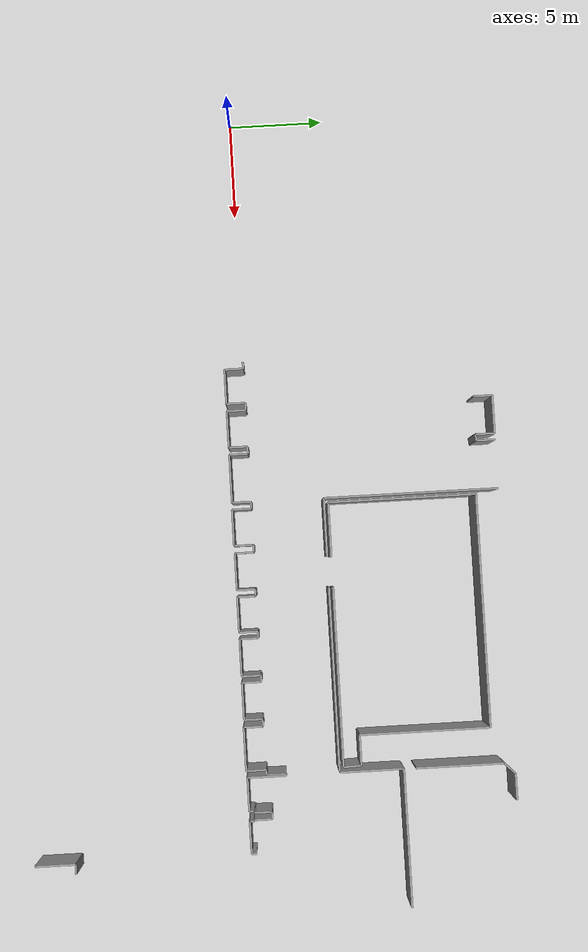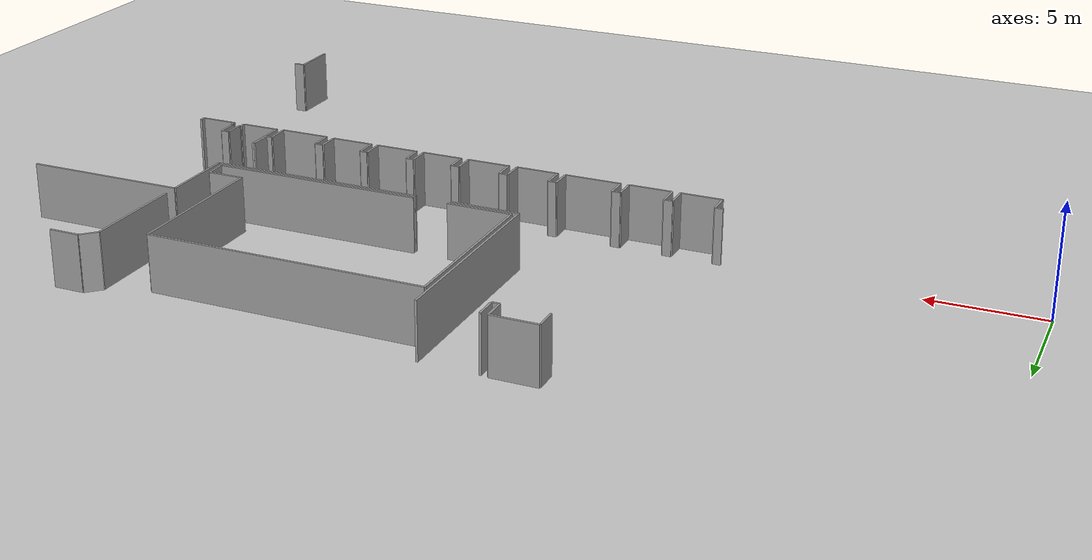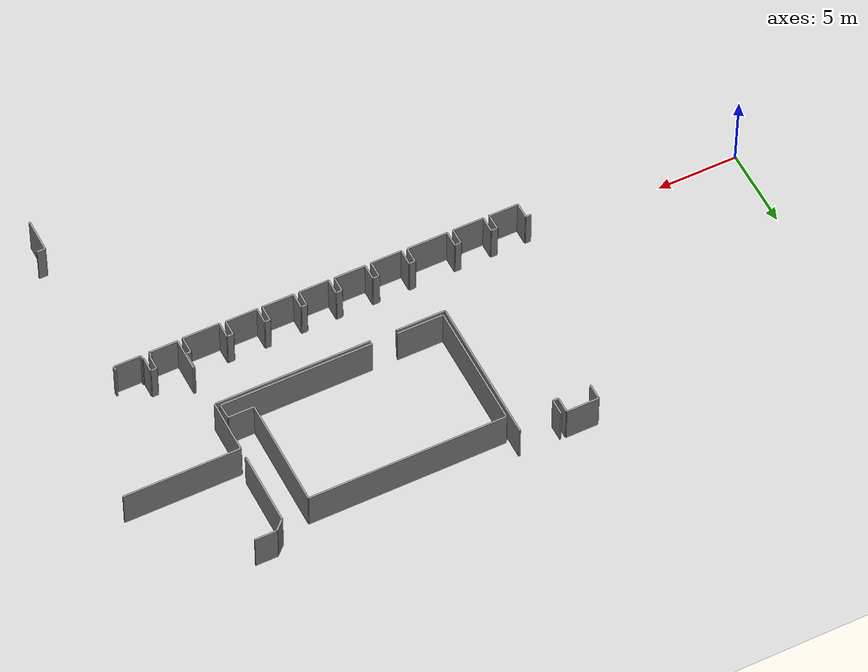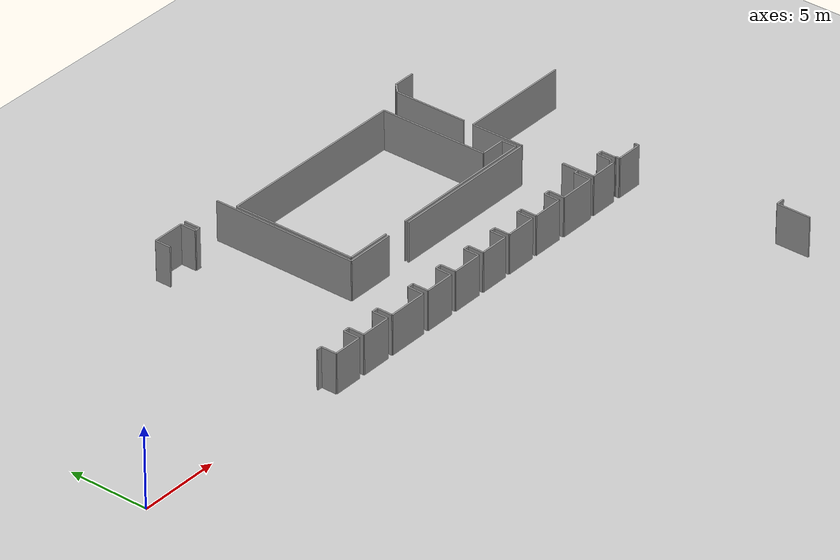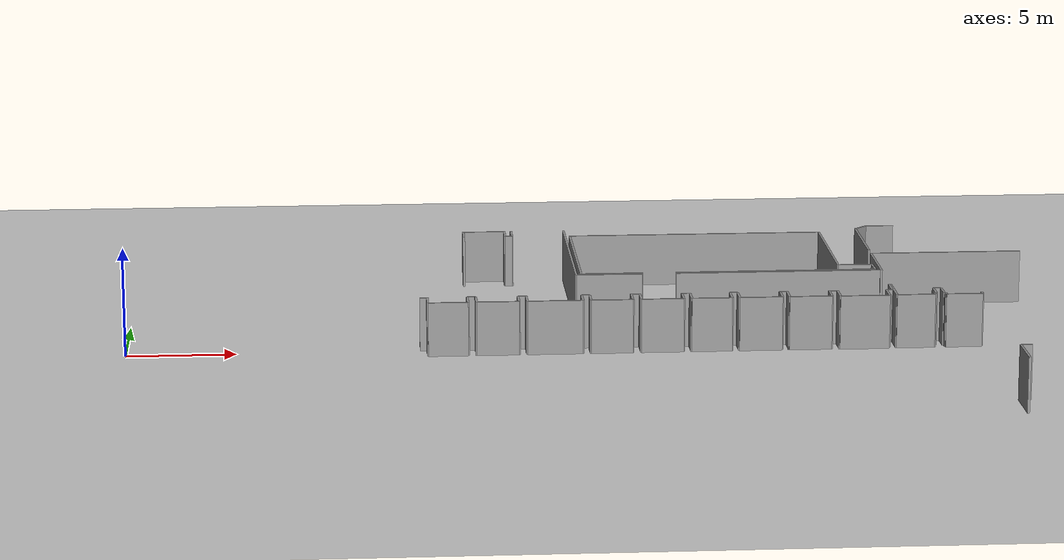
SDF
<sdf version="1.6">
 <world name="default">
  <model name="ground_plane">
   <static>1</static>
   <link name="link">
    <collision name="collision">
     <geometry><plane><normal>0 0 1</normal><size>100 100</size></plane></geometry>
     <surface><friction><ode><mu>100</mu><mu2>50</mu2></ode></friction></surface>
    </collision>
    <visual name="visual">
     <cast_shadows>0</cast_shadows>
     <geometry><plane><normal>0 0 1</normal><size>100 100</size></plane></geometry>
     <material>
      <script><uri>file://media/materials/scripts/gazebo.material</uri><name>Gazebo/Grey</name></script>
     </material>
    </visual>
   </link>
  </model>
  <model name="50010541">
   <static>1</static>
   <link name="Wall_157">
    <collision name="Wall_157_Collision">
     <geometry><box><size>2.2736216724 0.1 2.5</size></box></geometry>
     <pose>1.1368108362 0 1.25 0 0 0</pose>
    </collision>
    <visual name="Wall_157_Visual">
     <pose>1.1368108362 0 1.25 0 0 0</pose>
     <geometry><box><size>2.2736216724 0.1 2.5</size></box></geometry>
     <material>
      <script><uri>file://media/materials/scripts/gazebo.material</uri><name>Gazebo/Grey</name></script>
      <ambient>1 1 1 1</ambient>
     </material>
    </visual>
    <pose>87.7014967057 -14.0532923718 0 0 0 3.14159265359</pose>
   </link>
   <link name="Wall_158">
    <collision name="Wall_158_Collision">
     <geometry><box><size>1.00567453315 0.1 2.5</size></box></geometry>
     <pose>0.502837266576 0 1.25 0 0 0</pose>
    </collision>
    <visual name="Wall_158_Visual">
     <pose>0.502837266576 0 1.25 0 0 0</pose>
     <geometry><box><size>1.00567453315 0.1 2.5</size></box></geometry>
     <material>
      <script><uri>file://media/materials/scripts/gazebo.material</uri><name>Gazebo/Grey</name></script>
      <ambient>1 1 1 1</ambient>
     </material>
    </visual>
    <pose>85.4278750333 -14.0532923718 0 0 0 1.57079632679</pose>
   </link>
   <link name="Wall_159">
    <collision name="Wall_159_Collision">
     <geometry><box><size>0.380841151156 0.1 2.5</size></box></geometry>
     <pose>0.190420575578 0 1.25 0 0 0</pose>
    </collision>
    <visual name="Wall_159_Visual">
     <pose>0.190420575578 0 1.25 0 0 0</pose>
     <geometry><box><size>0.380841151156 0.1 2.5</size></box></geometry>
     <material>
      <script><uri>file://media/materials/scripts/gazebo.material</uri><name>Gazebo/Grey</name></script>
      <ambient>1 1 1 1</ambient>
     </material>
    </visual>
    <pose>85.4278750333 -13.0476178386 0 0 0 3.14159265359</pose>
   </link>
   <link name="Wall_160">
    <collision name="Wall_160_Collision">
     <geometry><box><size>0.964797582928 0.1 2.5</size></box></geometry>
     <pose>0.482398791464 0 1.25 0 0 0</pose>
    </collision>
    <visual name="Wall_160_Visual">
     <pose>0.482398791464 0 1.25 0 0 0</pose>
     <geometry><box><size>0.964797582928 0.1 2.5</size></box></geometry>
     <material>
      <script><uri>file://media/materials/scripts/gazebo.material</uri><name>Gazebo/Grey</name></script>
      <ambient>1 1 1 1</ambient>
     </material>
    </visual>
    <pose>85.0470338822 -13.0476178386 0 0 0 -1.57079632679</pose>
   </link>
   <link name="Wall_161">
    <collision name="Wall_161_Collision">
     <geometry><box><size>1.94228987089 0.1 2.5</size></box></geometry>
     <pose>0.971144935447 0 1.25 0 0 0</pose>
    </collision>
    <visual name="Wall_161_Visual">
     <pose>0.971144935447 0 1.25 0 0 0</pose>
     <geometry><box><size>1.94228987089 0.1 2.5</size></box></geometry>
     <material>
      <script><uri>file://media/materials/scripts/gazebo.material</uri><name>Gazebo/Grey</name></script>
      <ambient>1 1 1 1</ambient>
     </material>
    </visual>
    <pose>85.0470338822 -14.0124154215 0 0 0 3.14159265359</pose>
   </link>
   <link name="Wall_162">
    <collision name="Wall_162_Collision">
     <geometry><box><size>1.00288169804 0.1 2.5</size></box></geometry>
     <pose>0.501440849022 0 1.25 0 0 0</pose>
    </collision>
    <visual name="Wall_162_Visual">
     <pose>0.501440849022 0 1.25 0 0 0</pose>
     <geometry><box><size>1.00288169804 0.1 2.5</size></box></geometry>
     <material>
      <script><uri>file://media/materials/scripts/gazebo.material</uri><name>Gazebo/Grey</name></script>
      <ambient>1 1 1 1</ambient>
     </material>
    </visual>
    <pose>83.1047440113 -14.0124154215 0 0 0 1.57079632679</pose>
   </link>
   <link name="Wall_163">
    <collision name="Wall_163_Collision">
     <geometry><box><size>0.330062331002 0.1 2.5</size></box></geometry>
     <pose>0.165031165501 0 1.25 0 0 0</pose>
    </collision>
    <visual name="Wall_163_Visual">
     <pose>0.165031165501 0 1.25 0 0 0</pose>
     <geometry><box><size>0.330062331002 0.1 2.5</size></box></geometry>
     <material>
      <script><uri>file://media/materials/scripts/gazebo.material</uri><name>Gazebo/Grey</name></script>
      <ambient>1 1 1 1</ambient>
     </material>
    </visual>
    <pose>83.1047440113 -13.0095337235 0 0 0 3.14159265359</pose>
   </link>
   <link name="Wall_164">
    <collision name="Wall_164_Collision">
     <geometry><box><size>1.00288169804 0.1 2.5</size></box></geometry>
     <pose>0.501440849022 0 1.25 0 0 0</pose>
    </collision>
    <visual name="Wall_164_Visual">
     <pose>0.501440849022 0 1.25 0 0 0</pose>
     <geometry><box><size>1.00288169804 0.1 2.5</size></box></geometry>
     <material>
      <script><uri>file://media/materials/scripts/gazebo.material</uri><name>Gazebo/Grey</name></script>
      <ambient>1 1 1 1</ambient>
     </material>
    </visual>
    <pose>82.7746816803 -13.0095337235 0 0 0 -1.57079632679</pose>
   </link>
   <link name="Wall_165">
    <collision name="Wall_165_Collision">
     <geometry><box><size>1.95358815838 0.1 2.5</size></box></geometry>
     <pose>0.97679407919 0 1.25 0 0 0</pose>
    </collision>
    <visual name="Wall_165_Visual">
     <pose>0.97679407919 0 1.25 0 0 0</pose>
     <geometry><box><size>1.95358815838 0.1 2.5</size></box></geometry>
     <material>
      <script><uri>file://media/materials/scripts/gazebo.material</uri><name>Gazebo/Grey</name></script>
      <ambient>1 1 1 1</ambient>
     </material>
    </visual>
    <pose>82.7746816803 -14.0124154215 0 0 0 3.14159265359</pose>
   </link>
   <link name="Wall_166">
    <collision name="Wall_166_Collision">
     <geometry><box><size>0.98180848768 0.1 2.5</size></box></geometry>
     <pose>0.49090424384 0 1.25 0 0 0</pose>
    </collision>
    <visual name="Wall_166_Visual">
     <pose>0.49090424384 0 1.25 0 0 0</pose>
     <geometry><box><size>0.98180848768 0.1 2.5</size></box></geometry>
     <material>
      <script><uri>file://media/materials/scripts/gazebo.material</uri><name>Gazebo/Grey</name></script>
      <ambient>1 1 1 1</ambient>
     </material>
    </visual>
    <pose>80.8210935219 -14.0124154215 0 0 0 1.57079632679</pose>
   </link>
   <link name="Wall_167">
    <collision name="Wall_167_Collision">
     <geometry><box><size>0.347073235753 0.1 2.5</size></box></geometry>
     <pose>0.173536617877 0 1.25 0 0 0</pose>
    </collision>
    <visual name="Wall_167_Visual">
     <pose>0.173536617877 0 1.25 0 0 0</pose>
     <geometry><box><size>0.347073235753 0.1 2.5</size></box></geometry>
     <material>
      <script><uri>file://media/materials/scripts/gazebo.material</uri><name>Gazebo/Grey</name></script>
      <ambient>1 1 1 1</ambient>
     </material>
    </visual>
    <pose>80.8210935219 -13.0306069338 0 0 0 3.14159265359</pose>
   </link>
   <link name="Wall_168">
    <collision name="Wall_168_Collision">
     <geometry><box><size>0.984601322788 0.1 2.5</size></box></geometry>
     <pose>0.492300661394 0 1.25 0 0 0</pose>
    </collision>
    <visual name="Wall_168_Visual">
     <pose>0.492300661394 0 1.25 0 0 0</pose>
     <geometry><box><size>0.984601322788 0.1 2.5</size></box></geometry>
     <material>
      <script><uri>file://media/materials/scripts/gazebo.material</uri><name>Gazebo/Grey</name></script>
      <ambient>1 1 1 1</ambient>
     </material>
    </visual>
    <pose>80.4740202861 -13.0306069338 0 0 0 -1.57079632679</pose>
   </link>
   <link name="Wall_169">
    <collision name="Wall_169_Collision">
     <geometry><box><size>1.84301727749 0.1 2.5</size></box></geometry>
     <pose>0.921508638747 0 1.25 0 0 0</pose>
    </collision>
    <visual name="Wall_169_Visual">
     <pose>0.921508638747 0 1.25 0 0 0</pose>
     <geometry><box><size>1.84301727749 0.1 2.5</size></box></geometry>
     <material>
      <script><uri>file://media/materials/scripts/gazebo.material</uri><name>Gazebo/Grey</name></script>
      <ambient>1 1 1 1</ambient>
     </material>
    </visual>
    <pose>80.4740202861 -14.0152082566 0 0 0 3.14159265359</pose>
   </link>
   <link name="Wall_170">
    <collision name="Wall_170_Collision">
     <geometry><box><size>0.978253970269 0.1 2.5</size></box></geometry>
     <pose>0.489126985135 0 1.25 0 0 0</pose>
    </collision>
    <visual name="Wall_170_Visual">
     <pose>0.489126985135 0 1.25 0 0 0</pose>
     <geometry><box><size>0.978253970269 0.1 2.5</size></box></geometry>
     <material>
      <script><uri>file://media/materials/scripts/gazebo.material</uri><name>Gazebo/Grey</name></script>
      <ambient>1 1 1 1</ambient>
     </material>
    </visual>
    <pose>78.6310030086 -14.0152082566 0 0 0 1.57079632679</pose>
   </link>
   <link name="Wall_171">
    <collision name="Wall_171_Collision">
     <geometry><box><size>0.366115293311 0.1 2.5</size></box></geometry>
     <pose>0.183057646656 0 1.25 0 0 0</pose>
    </collision>
    <visual name="Wall_171_Visual">
     <pose>0.183057646656 0 1.25 0 0 0</pose>
     <geometry><box><size>0.366115293311 0.1 2.5</size></box></geometry>
     <material>
      <script><uri>file://media/materials/scripts/gazebo.material</uri><name>Gazebo/Grey</name></script>
      <ambient>1 1 1 1</ambient>
     </material>
    </visual>
    <pose>78.6310030086 -13.0369542864 0 0 0 3.14159265359</pose>
   </link>
   <link name="Wall_172">
    <collision name="Wall_172_Collision">
     <geometry><box><size>0.9720335648 0.1 2.5</size></box></geometry>
     <pose>0.4860167824 0 1.25 0 0 0</pose>
    </collision>
    <visual name="Wall_172_Visual">
     <pose>0.4860167824 0 1.25 0 0 0</pose>
     <geometry><box><size>0.9720335648 0.1 2.5</size></box></geometry>
     <material>
      <script><uri>file://media/materials/scripts/gazebo.material</uri><name>Gazebo/Grey</name></script>
      <ambient>1 1 1 1</ambient>
     </material>
    </visual>
    <pose>78.2648877153 -13.0369542864 0 0 0 -1.57079632679</pose>
   </link>
   <link name="Wall_173">
    <collision name="Wall_173_Collision">
     <geometry><box><size>1.93124547751 0.1 2.5</size></box></geometry>
     <pose>0.965622738756 0 1.25 0 0 0</pose>
    </collision>
    <visual name="Wall_173_Visual">
     <pose>0.965622738756 0 1.25 0 0 0</pose>
     <geometry><box><size>1.93124547751 0.1 2.5</size></box></geometry>
     <material>
      <script><uri>file://media/materials/scripts/gazebo.material</uri><name>Gazebo/Grey</name></script>
      <ambient>1 1 1 1</ambient>
     </material>
    </visual>
    <pose>78.2648877153 -14.0089878512 0 0 0 3.14159265359</pose>
   </link>
   <link name="Wall_174">
    <collision name="Wall_174_Collision">
     <geometry><box><size>0.990948675308 0.1 2.5</size></box></geometry>
     <pose>0.495474337654 0 1.25 0 0 0</pose>
    </collision>
    <visual name="Wall_174_Visual">
     <pose>0.495474337654 0 1.25 0 0 0</pose>
     <geometry><box><size>0.990948675308 0.1 2.5</size></box></geometry>
     <material>
      <script><uri>file://media/materials/scripts/gazebo.material</uri><name>Gazebo/Grey</name></script>
      <ambient>1 1 1 1</ambient>
     </material>
    </visual>
    <pose>76.3336422378 -14.0089878512 0 0 0 1.57079632679</pose>
   </link>
   <link name="Wall_175">
    <collision name="Wall_175_Collision">
     <geometry><box><size>0.391377756338 0.1 2.5</size></box></geometry>
     <pose>0.195688878169 0 1.25 0 0 0</pose>
    </collision>
    <visual name="Wall_175_Visual">
     <pose>0.195688878169 0 1.25 0 0 0</pose>
     <geometry><box><size>0.391377756338 0.1 2.5</size></box></geometry>
     <material>
      <script><uri>file://media/materials/scripts/gazebo.material</uri><name>Gazebo/Grey</name></script>
      <ambient>1 1 1 1</ambient>
     </material>
    </visual>
    <pose>76.3336422378 -13.0180391759 0 0 0 3.14159265359</pose>
   </link>
   <link name="Wall_176">
    <collision name="Wall_176_Collision">
     <geometry><box><size>1.00986378581 0.1 2.5</size></box></geometry>
     <pose>0.504931892907 0 1.25 0 0 0</pose>
    </collision>
    <visual name="Wall_176_Visual">
     <pose>0.504931892907 0 1.25 0 0 0</pose>
     <geometry><box><size>1.00986378581 0.1 2.5</size></box></geometry>
     <material>
      <script><uri>file://media/materials/scripts/gazebo.material</uri><name>Gazebo/Grey</name></script>
      <ambient>1 1 1 1</ambient>
     </material>
    </visual>
    <pose>75.9422644815 -13.0180391759 0 0 0 -1.57079632679</pose>
   </link>
   <link name="Wall_177">
    <collision name="Wall_177_Collision">
     <geometry><box><size>1.90572912038 0.1 2.5</size></box></geometry>
     <pose>0.952864560192 0 1.25 0 0 0</pose>
    </collision>
    <visual name="Wall_177_Visual">
     <pose>0.952864560192 0 1.25 0 0 0</pose>
     <geometry><box><size>1.90572912038 0.1 2.5</size></box></geometry>
     <material>
      <script><uri>file://media/materials/scripts/gazebo.material</uri><name>Gazebo/Grey</name></script>
      <ambient>1 1 1 1</ambient>
     </material>
    </visual>
    <pose>75.9422644815 -14.0279029617 0 0 0 3.14159265359</pose>
   </link>
   <link name="Wall_178">
    <collision name="Wall_178_Collision">
     <geometry><box><size>1.0045320097 0.1 2.5</size></box></geometry>
     <pose>0.502266004849 0 1.25 0 0 0</pose>
    </collision>
    <visual name="Wall_178_Visual">
     <pose>0.502266004849 0 1.25 0 0 0</pose>
     <geometry><box><size>1.0045320097 0.1 2.5</size></box></geometry>
     <material>
      <script><uri>file://media/materials/scripts/gazebo.material</uri><name>Gazebo/Grey</name></script>
      <ambient>1 1 1 1</ambient>
     </material>
    </visual>
    <pose>74.0365353611 -14.0279029617 0 0 0 1.57079632679</pose>
   </link>
   <link name="Wall_179">
    <collision name="Wall_179_Collision">
     <geometry><box><size>0.365099716908 0.1 2.5</size></box></geometry>
     <pose>0.182549858454 0 1.25 0 0 0</pose>
    </collision>
    <visual name="Wall_179_Visual">
     <pose>0.182549858454 0 1.25 0 0 0</pose>
     <geometry><box><size>0.365099716908 0.1 2.5</size></box></geometry>
     <material>
      <script><uri>file://media/materials/scripts/gazebo.material</uri><name>Gazebo/Grey</name></script>
      <ambient>1 1 1 1</ambient>
     </material>
    </visual>
    <pose>74.0365353611 -13.023370952 0 0 0 3.14159265359</pose>
   </link>
   <link name="Wall_180">
    <collision name="Wall_180_Collision">
     <geometry><box><size>0.989044469552 0.1 2.5</size></box></geometry>
     <pose>0.494522234776 0 1.25 0 0 0</pose>
    </collision>
    <visual name="Wall_180_Visual">
     <pose>0.494522234776 0 1.25 0 0 0</pose>
     <geometry><box><size>0.989044469552 0.1 2.5</size></box></geometry>
     <material>
      <script><uri>file://media/materials/scripts/gazebo.material</uri><name>Gazebo/Grey</name></script>
      <ambient>1 1 1 1</ambient>
     </material>
    </visual>
    <pose>73.6714356442 -13.023370952 0 0 0 -1.57079632679</pose>
   </link>
   <link name="Wall_181">
    <collision name="Wall_181_Collision">
     <geometry><box><size>2.53348228454 0.1 2.5</size></box></geometry>
     <pose>1.26674114227 0 1.25 0 0 0</pose>
    </collision>
    <visual name="Wall_181_Visual">
     <pose>1.26674114227 0 1.25 0 0 0</pose>
     <geometry><box><size>2.53348228454 0.1 2.5</size></box></geometry>
     <material>
      <script><uri>file://media/materials/scripts/gazebo.material</uri><name>Gazebo/Grey</name></script>
      <ambient>1 1 1 1</ambient>
     </material>
    </visual>
    <pose>73.6714356442 -14.0124154215 0 0 0 3.14159265359</pose>
   </link>
   <link name="Wall_182">
    <collision name="Wall_182_Collision">
     <geometry><box><size>0.979904281924 0.1 2.5</size></box></geometry>
     <pose>0.489952140962 0 1.25 0 0 0</pose>
    </collision>
    <visual name="Wall_182_Visual">
     <pose>0.489952140962 0 1.25 0 0 0</pose>
     <geometry><box><size>0.979904281924 0.1 2.5</size></box></geometry>
     <material>
      <script><uri>file://media/materials/scripts/gazebo.material</uri><name>Gazebo/Grey</name></script>
      <ambient>1 1 1 1</ambient>
     </material>
    </visual>
    <pose>71.1379533597 -14.0124154215 0 0 0 1.57079632679</pose>
   </link>
   <link name="Wall_183">
    <collision name="Wall_183_Collision">
     <geometry><box><size>0.377413580795 0.1 2.5</size></box></geometry>
     <pose>0.188706790398 0 1.25 0 0 0</pose>
    </collision>
    <visual name="Wall_183_Visual">
     <pose>0.188706790398 0 1.25 0 0 0</pose>
     <geometry><box><size>0.377413580795 0.1 2.5</size></box></geometry>
     <material>
      <script><uri>file://media/materials/scripts/gazebo.material</uri><name>Gazebo/Grey</name></script>
      <ambient>1 1 1 1</ambient>
     </material>
    </visual>
    <pose>71.1379533597 -13.0325111396 0 0 0 3.14159265359</pose>
   </link>
   <link name="Wall_184">
    <collision name="Wall_184_Collision">
     <geometry><box><size>0.987140263796 0.1 2.5</size></box></geometry>
     <pose>0.493570131898 0 1.25 0 0 0</pose>
    </collision>
    <visual name="Wall_184_Visual">
     <pose>0.493570131898 0 1.25 0 0 0</pose>
     <geometry><box><size>0.987140263796 0.1 2.5</size></box></geometry>
     <material>
      <script><uri>file://media/materials/scripts/gazebo.material</uri><name>Gazebo/Grey</name></script>
      <ambient>1 1 1 1</ambient>
     </material>
    </visual>
    <pose>70.7605397789 -13.0325111396 0 0 0 -1.57079632679</pose>
   </link>
   <link name="Wall_185">
    <collision name="Wall_185_Collision">
     <geometry><box><size>1.92337476039 0.1 2.5</size></box></geometry>
     <pose>0.961687380194 0 1.25 0 0 0</pose>
    </collision>
    <visual name="Wall_185_Visual">
     <pose>0.961687380194 0 1.25 0 0 0</pose>
     <geometry><box><size>1.92337476039 0.1 2.5</size></box></geometry>
     <material>
      <script><uri>file://media/materials/scripts/gazebo.material</uri><name>Gazebo/Grey</name></script>
      <ambient>1 1 1 1</ambient>
     </material>
    </visual>
    <pose>70.7605397789 -14.0196514034 0 0 0 3.14159265359</pose>
   </link>
   <link name="Wall_186">
    <collision name="Wall_186_Collision">
     <geometry><box><size>0.994376245668 0.1 2.5</size></box></geometry>
     <pose>0.497188122834 0 1.25 0 0 0</pose>
    </collision>
    <visual name="Wall_186_Visual">
     <pose>0.497188122834 0 1.25 0 0 0</pose>
     <geometry><box><size>0.994376245668 0.1 2.5</size></box></geometry>
     <material>
      <script><uri>file://media/materials/scripts/gazebo.material</uri><name>Gazebo/Grey</name></script>
      <ambient>1 1 1 1</ambient>
     </material>
    </visual>
    <pose>68.8371650185 -14.0196514034 0 0 0 1.57079632679</pose>
   </link>
   <link name="Wall_187">
    <collision name="Wall_187_Collision">
     <geometry><box><size>0.384776509718 0.1 2.5</size></box></geometry>
     <pose>0.192388254859 0 1.25 0 0 0</pose>
    </collision>
    <visual name="Wall_187_Visual">
     <pose>0.192388254859 0 1.25 0 0 0</pose>
     <geometry><box><size>0.384776509718 0.1 2.5</size></box></geometry>
     <material>
      <script><uri>file://media/materials/scripts/gazebo.material</uri><name>Gazebo/Grey</name></script>
      <ambient>1 1 1 1</ambient>
     </material>
    </visual>
    <pose>68.8371650185 -13.0252751577 0 0 0 3.14159265359</pose>
   </link>
   <link name="Wall_188">
    <collision name="Wall_188_Collision">
     <geometry><box><size>0.994376245668 0.1 2.5</size></box></geometry>
     <pose>0.497188122834 0 1.25 0 0 0</pose>
    </collision>
    <visual name="Wall_188_Visual">
     <pose>0.497188122834 0 1.25 0 0 0</pose>
     <geometry><box><size>0.994376245668 0.1 2.5</size></box></geometry>
     <material>
      <script><uri>file://media/materials/scripts/gazebo.material</uri><name>Gazebo/Grey</name></script>
      <ambient>1 1 1 1</ambient>
     </material>
    </visual>
    <pose>68.4523885088 -13.0252751577 0 0 0 -1.57079632679</pose>
   </link>
   <link name="Wall_189">
    <collision name="Wall_189_Collision">
     <geometry><box><size>1.81953207317 0.1 2.5</size></box></geometry>
     <pose>0.909766036586 0 1.25 0 0 0</pose>
    </collision>
    <visual name="Wall_189_Visual">
     <pose>0.909766036586 0 1.25 0 0 0</pose>
     <geometry><box><size>1.81953207317 0.1 2.5</size></box></geometry>
     <material>
      <script><uri>file://media/materials/scripts/gazebo.material</uri><name>Gazebo/Grey</name></script>
      <ambient>1 1 1 1</ambient>
     </material>
    </visual>
    <pose>68.4523885088 -14.0196514034 0 0 0 3.14159265359</pose>
   </link>
   <link name="Wall_190">
    <collision name="Wall_190_Collision">
     <geometry><box><size>0.982697117032 0.1 2.5</size></box></geometry>
     <pose>0.491348558516 0 1.25 0 0 0</pose>
    </collision>
    <visual name="Wall_190_Visual">
     <pose>0.491348558516 0 1.25 0 0 0</pose>
     <geometry><box><size>0.982697117032 0.1 2.5</size></box></geometry>
     <material>
      <script><uri>file://media/materials/scripts/gazebo.material</uri><name>Gazebo/Grey</name></script>
      <ambient>1 1 1 1</ambient>
     </material>
    </visual>
    <pose>66.6328564356 -14.0196514034 0 0 0 1.57079632679</pose>
   </link>
   <link name="Wall_191">
    <collision name="Wall_191_Collision">
     <geometry><box><size>0.353547535323 0.1 2.5</size></box></geometry>
     <pose>0.176773767662 0 1.25 0 0 0</pose>
    </collision>
    <visual name="Wall_191_Visual">
     <pose>0.176773767662 0 1.25 0 0 0</pose>
     <geometry><box><size>0.353547535323 0.1 2.5</size></box></geometry>
     <material>
      <script><uri>file://media/materials/scripts/gazebo.material</uri><name>Gazebo/Grey</name></script>
      <ambient>1 1 1 1</ambient>
     </material>
    </visual>
    <pose>66.6328564356 -13.0369542864 0 0 0 3.14159265359</pose>
   </link>
   <link name="Wall_246">
    <collision name="Wall_246_Collision">
     <geometry><box><size>0.993614563366 0.1 2.5</size></box></geometry>
     <pose>0.496807281683 0 1.25 0 0 0</pose>
    </collision>
    <visual name="Wall_246_Visual">
     <pose>0.496807281683 0 1.25 0 0 0</pose>
     <geometry><box><size>0.993614563366 0.1 2.5</size></box></geometry>
     <material>
      <script><uri>file://media/materials/scripts/gazebo.material</uri><name>Gazebo/Grey</name></script>
      <ambient>1 1 1 1</ambient>
     </material>
    </visual>
    <pose>68.7884173511 -0.994884033869 0 0 0 1.57079632679</pose>
   </link>
   <link name="Wall_247">
    <collision name="Wall_247_Collision">
     <geometry><box><size>2.0090640194 0.1 2.5</size></box></geometry>
     <pose>1.0045320097 0 1.25 0 0 0</pose>
    </collision>
    <visual name="Wall_247_Visual">
     <pose>1.0045320097 0 1.25 0 0 0</pose>
     <geometry><box><size>2.0090640194 0.1 2.5</size></box></geometry>
     <material>
      <script><uri>file://media/materials/scripts/gazebo.material</uri><name>Gazebo/Grey</name></script>
      <ambient>1 1 1 1</ambient>
     </material>
    </visual>
    <pose>68.7884173511 -0.00126947050386 0 0 0 0.0</pose>
   </link>
   <link name="Wall_248">
    <collision name="Wall_248_Collision">
     <geometry><box><size>0.993614563366 0.1 2.5</size></box></geometry>
     <pose>0.496807281683 0 1.25 0 0 0</pose>
    </collision>
    <visual name="Wall_248_Visual">
     <pose>0.496807281683 0 1.25 0 0 0</pose>
     <geometry><box><size>0.993614563366 0.1 2.5</size></box></geometry>
     <material>
      <script><uri>file://media/materials/scripts/gazebo.material</uri><name>Gazebo/Grey</name></script>
      <ambient>1 1 1 1</ambient>
     </material>
    </visual>
    <pose>70.7974813705 -0.00126947050386 0 0 0 -1.57079632679</pose>
   </link>
   <link name="Wall_249">
    <collision name="Wall_249_Collision">
     <geometry><box><size>0.333236007261 0.1 2.5</size></box></geometry>
     <pose>0.166618003631 0 1.25 0 0 0</pose>
    </collision>
    <visual name="Wall_249_Visual">
     <pose>0.166618003631 0 1.25 0 0 0</pose>
     <geometry><box><size>0.333236007261 0.1 2.5</size></box></geometry>
     <material>
      <script><uri>file://media/materials/scripts/gazebo.material</uri><name>Gazebo/Grey</name></script>
      <ambient>1 1 1 1</ambient>
     </material>
    </visual>
    <pose>70.7974813705 -0.994884033869 0 0 0 0.0</pose>
   </link>
   <link name="Wall_250">
    <collision name="Wall_250_Collision">
     <geometry><box><size>0.994884033869 0.1 2.5</size></box></geometry>
     <pose>0.497442016935 0 1.25 0 0 0</pose>
    </collision>
    <visual name="Wall_250_Visual">
     <pose>0.497442016935 0 1.25 0 0 0</pose>
     <geometry><box><size>0.994884033869 0.1 2.5</size></box></geometry>
     <material>
      <script><uri>file://media/materials/scripts/gazebo.material</uri><name>Gazebo/Grey</name></script>
      <ambient>1 1 1 1</ambient>
     </material>
    </visual>
    <pose>71.1307173778 -0.994884033869 0 0 0 1.57079632679</pose>
   </link>
   <link name="Wall_251">
    <collision name="Wall_251_Collision">
     <geometry><box><size>9.18538077768 0.1 2.5</size></box></geometry>
     <pose>4.59269038884 0 1.25 0 0 0</pose>
    </collision>
    <visual name="Wall_251_Visual">
     <pose>4.59269038884 0 1.25 0 0 0</pose>
     <geometry><box><size>9.18538077768 0.1 2.5</size></box></geometry>
     <material>
      <script><uri>file://media/materials/scripts/gazebo.material</uri><name>Gazebo/Grey</name></script>
      <ambient>1 1 1 1</ambient>
     </material>
    </visual>
    <pose>73.7015220951 -0.0 0 0 0 -1.57079632679</pose>
   </link>
   <link name="Wall_252">
    <collision name="Wall_252_Collision">
     <geometry><box><size>3.06805631371 0.1 2.5</size></box></geometry>
     <pose>1.53402815686 0 1.25 0 0 0</pose>
    </collision>
    <visual name="Wall_252_Visual">
     <pose>1.53402815686 0 1.25 0 0 0</pose>
     <geometry><box><size>3.06805631371 0.1 2.5</size></box></geometry>
     <material>
      <script><uri>file://media/materials/scripts/gazebo.material</uri><name>Gazebo/Grey</name></script>
      <ambient>1 1 1 1</ambient>
     </material>
    </visual>
    <pose>73.7015220951 -9.18538077768 0 0 0 0.0</pose>
   </link>
   <link name="Wall_253">
    <collision name="Wall_253_Collision">
     <geometry><box><size>9.58183641603 0.1 2.5</size></box></geometry>
     <pose>4.79091820802 0 1.25 0 0 0</pose>
    </collision>
    <visual name="Wall_253_Visual">
     <pose>4.79091820802 0 1.25 0 0 0</pose>
     <geometry><box><size>9.58183641603 0.1 2.5</size></box></geometry>
     <material>
      <script><uri>file://media/materials/scripts/gazebo.material</uri><name>Gazebo/Grey</name></script>
      <ambient>1 1 1 1</ambient>
     </material>
    </visual>
    <pose>78.3811712135 -9.18538077768 0 0 0 0.0</pose>
   </link>
   <link name="Wall_254">
    <collision name="Wall_254_Collision">
     <geometry><box><size>1.04870958323 0.1 2.5</size></box></geometry>
     <pose>0.524354791616 0 1.25 0 0 0</pose>
    </collision>
    <visual name="Wall_254_Visual">
     <pose>0.524354791616 0 1.25 0 0 0</pose>
     <geometry><box><size>1.04870958323 0.1 2.5</size></box></geometry>
     <material>
      <script><uri>file://media/materials/scripts/gazebo.material</uri><name>Gazebo/Grey</name></script>
      <ambient>1 1 1 1</ambient>
     </material>
    </visual>
    <pose>87.9630076295 -11.9558732053 0 0 0 -1.57079632679</pose>
   </link>
   <link name="Wall_255">
    <collision name="Wall_255_Collision">
     <geometry><box><size>0.280552981351 0.1 2.5</size></box></geometry>
     <pose>0.140276490676 0 1.25 0 0 0</pose>
    </collision>
    <visual name="Wall_255_Visual">
     <pose>0.140276490676 0 1.25 0 0 0</pose>
     <geometry><box><size>0.280552981351 0.1 2.5</size></box></geometry>
     <material>
      <script><uri>file://media/materials/scripts/gazebo.material</uri><name>Gazebo/Grey</name></script>
      <ambient>1 1 1 1</ambient>
     </material>
    </visual>
    <pose>87.9630076295 -13.0045827885 0 0 0 3.14159265359</pose>
   </link>
   <link name="Wall_256">
    <collision name="Wall_256_Collision">
     <geometry><box><size>1.04888244809 0.1 2.5</size></box></geometry>
     <pose>0.524441224047 0 1.25 0 0 0</pose>
    </collision>
    <visual name="Wall_256_Visual">
     <pose>0.524441224047 0 1.25 0 0 0</pose>
     <geometry><box><size>1.04888244809 0.1 2.5</size></box></geometry>
     <material>
      <script><uri>file://media/materials/scripts/gazebo.material</uri><name>Gazebo/Grey</name></script>
      <ambient>1 1 1 1</ambient>
     </material>
    </visual>
    <pose>87.6824546482 -13.0045827885 0 0 0 -1.55264071388</pose>
   </link>
   <link name="Wall_257">
    <collision name="Wall_257_Collision">
     <geometry><box><size>9.40169855153 0.1 2.5</size></box></geometry>
     <pose>4.70084927577 0 1.25 0 0 0</pose>
    </collision>
    <visual name="Wall_257_Visual">
     <pose>4.70084927577 0 1.25 0 0 0</pose>
     <geometry><box><size>9.40169855153 0.1 2.5</size></box></geometry>
     <material>
      <script><uri>file://media/materials/scripts/gazebo.material</uri><name>Gazebo/Grey</name></script>
      <ambient>1 1 1 1</ambient>
     </material>
    </visual>
    <pose>87.780203877 -8.97007858022 0 0 0 3.14159265359</pose>
   </link>
   <link name="Wall_258">
    <collision name="Wall_258_Collision">
     <geometry><box><size>2.88931486677 0.1 2.5</size></box></geometry>
     <pose>1.44465743338 0 1.25 0 0 0</pose>
    </collision>
    <visual name="Wall_258_Visual">
     <pose>1.44465743338 0 1.25 0 0 0</pose>
     <geometry><box><size>2.88931486677 0.1 2.5</size></box></geometry>
     <material>
      <script><uri>file://media/materials/scripts/gazebo.material</uri><name>Gazebo/Grey</name></script>
      <ambient>1 1 1 1</ambient>
     </material>
    </visual>
    <pose>76.8237847994 -8.97007858022 0 0 0 3.14159265359</pose>
   </link>
   <link name="Wall_259">
    <collision name="Wall_259_Collision">
     <geometry><box><size>7.78477397078 0.1 2.5</size></box></geometry>
     <pose>3.89238698539 0 1.25 0 0 0</pose>
    </collision>
    <visual name="Wall_259_Visual">
     <pose>3.89238698539 0 1.25 0 0 0</pose>
     <geometry><box><size>7.78477397078 0.1 2.5</size></box></geometry>
     <material>
      <script><uri>file://media/materials/scripts/gazebo.material</uri><name>Gazebo/Grey</name></script>
      <ambient>1 1 1 1</ambient>
     </material>
    </visual>
    <pose>73.9344699326 -8.97007858022 0 0 0 1.57079632679</pose>
   </link>
   <link name="Wall_260">
    <collision name="Wall_260_Collision">
     <geometry><box><size>12.2182727584 0.1 2.5</size></box></geometry>
     <pose>6.10913637922 0 1.25 0 0 0</pose>
    </collision>
    <visual name="Wall_260_Visual">
     <pose>6.10913637922 0 1.25 0 0 0</pose>
     <geometry><box><size>12.2182727584 0.1 2.5</size></box></geometry>
     <material>
      <script><uri>file://media/materials/scripts/gazebo.material</uri><name>Gazebo/Grey</name></script>
      <ambient>1 1 1 1</ambient>
     </material>
    </visual>
    <pose>73.9344699326 -1.18530460945 0 0 0 0.0</pose>
   </link>
   <link name="Wall_261">
    <collision name="Wall_261_Collision">
     <geometry><box><size>6.84993589174 0.1 2.5</size></box></geometry>
     <pose>3.42496794587 0 1.25 0 0 0</pose>
    </collision>
    <visual name="Wall_261_Visual">
     <pose>3.42496794587 0 1.25 0 0 0</pose>
     <geometry><box><size>6.84993589174 0.1 2.5</size></box></geometry>
     <material>
      <script><uri>file://media/materials/scripts/gazebo.material</uri><name>Gazebo/Grey</name></script>
      <ambient>1 1 1 1</ambient>
     </material>
    </visual>
    <pose>86.152742691 -1.18530460945 0 0 0 -1.57079632679</pose>
   </link>
   <link name="Wall_262">
    <collision name="Wall_262_Collision">
     <geometry><box><size>1.59953283485 0.1 2.5</size></box></geometry>
     <pose>0.799766417427 0 1.25 0 0 0</pose>
    </collision>
    <visual name="Wall_262_Visual">
     <pose>0.799766417427 0 1.25 0 0 0</pose>
     <geometry><box><size>1.59953283485 0.1 2.5</size></box></geometry>
     <material>
      <script><uri>file://media/materials/scripts/gazebo.material</uri><name>Gazebo/Grey</name></script>
      <ambient>1 1 1 1</ambient>
     </material>
    </visual>
    <pose>86.152742691 -8.03524050119 0 0 0 0.0</pose>
   </link>
   <link name="Wall_263">
    <collision name="Wall_263_Collision">
     <geometry><box><size>0.935255166686 0.1 2.5</size></box></geometry>
     <pose>0.467627583343 0 1.25 0 0 0</pose>
    </collision>
    <visual name="Wall_263_Visual">
     <pose>0.467627583343 0 1.25 0 0 0</pose>
     <geometry><box><size>0.935255166686 0.1 2.5</size></box></geometry>
     <material>
      <script><uri>file://media/materials/scripts/gazebo.material</uri><name>Gazebo/Grey</name></script>
      <ambient>1 1 1 1</ambient>
     </material>
    </visual>
    <pose>87.7522755259 -8.03524050119 0 0 0 -1.54093014217</pose>
   </link>
   <link name="Wall_301">
    <collision name="Wall_301_Collision">
     <geometry><box><size>0.27674456984 0.1 2.5</size></box></geometry>
     <pose>0.13837228492 0 1.25 0 0 0</pose>
    </collision>
    <visual name="Wall_301_Visual">
     <pose>0.13837228492 0 1.25 0 0 0</pose>
     <geometry><box><size>0.27674456984 0.1 2.5</size></box></geometry>
     <material>
      <script><uri>file://media/materials/scripts/gazebo.material</uri><name>Gazebo/Grey</name></script>
      <ambient>1 1 1 1</ambient>
     </material>
    </visual>
    <pose>91.9745344217 -13.7280540287 0 0 0 -1.57079632679</pose>
   </link>
   <link name="Wall_302">
    <collision name="Wall_302_Collision">
     <geometry><box><size>1.66554530105 0.1 2.5</size></box></geometry>
     <pose>0.832772650527 0 1.25 0 0 0</pose>
    </collision>
    <visual name="Wall_302_Visual">
     <pose>0.832772650527 0 1.25 0 0 0</pose>
     <geometry><box><size>1.66554530105 0.1 2.5</size></box></geometry>
     <material>
      <script><uri>file://media/materials/scripts/gazebo.material</uri><name>Gazebo/Grey</name></script>
      <ambient>1 1 1 1</ambient>
     </material>
    </visual>
    <pose>91.9745344217 -14.0047985985 0 0 0 3.14159265359</pose>
   </link>
   <link name="Wall_303">
    <collision name="Wall_303_Collision">
     <geometry><box><size>0.243357495589 0.1 2.5</size></box></geometry>
     <pose>0.121678747794 0 1.25 0 0 0</pose>
    </collision>
    <visual name="Wall_303_Visual">
     <pose>0.121678747794 0 1.25 0 0 0</pose>
     <geometry><box><size>0.243357495589 0.1 2.5</size></box></geometry>
     <material>
      <script><uri>file://media/materials/scripts/gazebo.material</uri><name>Gazebo/Grey</name></script>
      <ambient>1 1 1 1</ambient>
     </material>
    </visual>
    <pose>90.3089891206 -14.0047985985 0 0 0 1.57079632679</pose>
   </link>
   <link name="Wall_304">
    <collision name="Wall_304_Collision">
     <geometry><box><size>0.0672819367042 0.1 2.5</size></box></geometry>
     <pose>0.0336409683521 0 1.25 0 0 0</pose>
    </collision>
    <visual name="Wall_304_Visual">
     <pose>0.0336409683521 0 1.25 0 0 0</pose>
     <geometry><box><size>0.0672819367042 0.1 2.5</size></box></geometry>
     <material>
      <script><uri>file://media/materials/scripts/gazebo.material</uri><name>Gazebo/Grey</name></script>
      <ambient>1 1 1 1</ambient>
     </material>
    </visual>
    <pose>90.3089891206 -13.7614411029 0 0 0 3.14159265359</pose>
   </link>
   <link name="Wall_305">
    <collision name="Wall_305_Collision">
     <geometry><box><size>0.930648826375 0.1 2.5</size></box></geometry>
     <pose>0.465324413187 0 1.25 0 0 0</pose>
    </collision>
    <visual name="Wall_305_Visual">
     <pose>0.465324413187 0 1.25 0 0 0</pose>
     <geometry><box><size>0.930648826375 0.1 2.5</size></box></geometry>
     <material>
      <script><uri>file://media/materials/scripts/gazebo.material</uri><name>Gazebo/Grey</name></script>
      <ambient>1 1 1 1</ambient>
     </material>
    </visual>
    <pose>90.2417071839 -13.7614411029 0 0 0 1.57079632679</pose>
   </link>
   <link name="Wall_306">
    <collision name="Wall_306_Collision">
     <geometry><box><size>0.363068564102 0.1 2.5</size></box></geometry>
     <pose>0.181534282051 0 1.25 0 0 0</pose>
    </collision>
    <visual name="Wall_306_Visual">
     <pose>0.181534282051 0 1.25 0 0 0</pose>
     <geometry><box><size>0.363068564102 0.1 2.5</size></box></geometry>
     <material>
      <script><uri>file://media/materials/scripts/gazebo.material</uri><name>Gazebo/Grey</name></script>
      <ambient>1 1 1 1</ambient>
     </material>
    </visual>
    <pose>90.2417071839 -12.8307922765 0 0 0 3.14159265359</pose>
   </link>
   <link name="Wall_307">
    <collision name="Wall_307_Collision">
     <geometry><box><size>0.902085740038 0.1 2.5</size></box></geometry>
     <pose>0.451042870019 0 1.25 0 0 0</pose>
    </collision>
    <visual name="Wall_307_Visual">
     <pose>0.451042870019 0 1.25 0 0 0</pose>
     <geometry><box><size>0.902085740038 0.1 2.5</size></box></geometry>
     <material>
      <script><uri>file://media/materials/scripts/gazebo.material</uri><name>Gazebo/Grey</name></script>
      <ambient>1 1 1 1</ambient>
     </material>
    </visual>
    <pose>89.8786386198 -12.8307922765 0 0 0 -1.57079632679</pose>
   </link>
   <link name="Wall_308">
    <collision name="Wall_308_Collision">
     <geometry><box><size>0.0850545237581 0.1 2.5</size></box></geometry>
     <pose>0.0425272618791 0 1.25 0 0 0</pose>
    </collision>
    <visual name="Wall_308_Visual">
     <pose>0.0425272618791 0 1.25 0 0 0</pose>
     <geometry><box><size>0.0850545237581 0.1 2.5</size></box></geometry>
     <material>
      <script><uri>file://media/materials/scripts/gazebo.material</uri><name>Gazebo/Grey</name></script>
      <ambient>1 1 1 1</ambient>
     </material>
    </visual>
    <pose>89.8786386198 -13.7328780166 0 0 0 3.14159265359</pose>
   </link>
   <link name="Wall_309">
    <collision name="Wall_309_Collision">
     <geometry><box><size>0.271920581925 0.1 2.5</size></box></geometry>
     <pose>0.135960290963 0 1.25 0 0 0</pose>
    </collision>
    <visual name="Wall_309_Visual">
     <pose>0.135960290963 0 1.25 0 0 0</pose>
     <geometry><box><size>0.271920581925 0.1 2.5</size></box></geometry>
     <material>
      <script><uri>file://media/materials/scripts/gazebo.material</uri><name>Gazebo/Grey</name></script>
      <ambient>1 1 1 1</ambient>
     </material>
    </visual>
    <pose>89.7935840961 -13.7328780166 0 0 0 -1.57079632679</pose>
   </link>
   <link name="Wall_310">
    <collision name="Wall_310_Collision">
     <geometry><box><size>1.75694717733 0.1 2.5</size></box></geometry>
     <pose>0.878473588666 0 1.25 0 0 0</pose>
    </collision>
    <visual name="Wall_310_Visual">
     <pose>0.878473588666 0 1.25 0 0 0</pose>
     <geometry><box><size>1.75694717733 0.1 2.5</size></box></geometry>
     <material>
      <script><uri>file://media/materials/scripts/gazebo.material</uri><name>Gazebo/Grey</name></script>
      <ambient>1 1 1 1</ambient>
     </material>
    </visual>
    <pose>89.7935840961 -14.0047985985 0 0 0 3.14159265359</pose>
   </link>
   <link name="Wall_311">
    <collision name="Wall_311_Collision">
     <geometry><box><size>2.05374938113 0.1 2.5</size></box></geometry>
     <pose>1.02687469057 0 1.25 0 0 0</pose>
    </collision>
    <visual name="Wall_311_Visual">
     <pose>1.02687469057 0 1.25 0 0 0</pose>
     <geometry><box><size>2.05374938113 0.1 2.5</size></box></geometry>
     <material>
      <script><uri>file://media/materials/scripts/gazebo.material</uri><name>Gazebo/Grey</name></script>
      <ambient>1 1 1 1</ambient>
     </material>
    </visual>
    <pose>88.0366369187 -14.0047985985 0 0 0 1.57079632679</pose>
   </link>
   <link name="Wall_312">
    <collision name="Wall_312_Collision">
     <geometry><box><size>3.35000571262 0.1 2.5</size></box></geometry>
     <pose>1.67500285631 0 1.25 0 0 0</pose>
    </collision>
    <visual name="Wall_312_Visual">
     <pose>1.67500285631 0 1.25 0 0 0</pose>
     <geometry><box><size>3.35000571262 0.1 2.5</size></box></geometry>
     <material>
      <script><uri>file://media/materials/scripts/gazebo.material</uri><name>Gazebo/Grey</name></script>
      <ambient>1 1 1 1</ambient>
     </material>
    </visual>
    <pose>88.0366369187 -9.17751006055 0 0 0 1.57079632679</pose>
   </link>
   <link name="Wall_313">
    <collision name="Wall_313_Collision">
     <geometry><box><size>7.17885569929 0.1 2.5</size></box></geometry>
     <pose>3.58942784964 0 1.25 0 0 0</pose>
    </collision>
    <visual name="Wall_313_Visual">
     <pose>3.58942784964 0 1.25 0 0 0</pose>
     <geometry><box><size>7.17885569929 0.1 2.5</size></box></geometry>
     <material>
      <script><uri>file://media/materials/scripts/gazebo.material</uri><name>Gazebo/Grey</name></script>
      <ambient>1 1 1 1</ambient>
     </material>
    </visual>
    <pose>88.0366369187 -5.82750434794 0 0 0 0.0</pose>
   </link>
   <link name="Wall_371">
    <collision name="Wall_371_Collision">
     <geometry><box><size>4.60322699402 0.1 2.5</size></box></geometry>
     <pose>2.30161349701 0 1.25 0 0 0</pose>
    </collision>
    <visual name="Wall_371_Visual">
     <pose>2.30161349701 0 1.25 0 0 0</pose>
     <geometry><box><size>4.60322699402 0.1 2.5</size></box></geometry>
     <material>
      <script><uri>file://media/materials/scripts/gazebo.material</uri><name>Gazebo/Grey</name></script>
      <ambient>1 1 1 1</ambient>
     </material>
    </visual>
    <pose>88.0429842713 -5.18959541975 0 0 0 1.57079632679</pose>
   </link>
   <link name="Wall_372">
    <collision name="Wall_372_Collision">
     <geometry><box><size>0.802276192222 0.1 2.5</size></box></geometry>
     <pose>0.401138096111 0 1.25 0 0 0</pose>
    </collision>
    <visual name="Wall_372_Visual">
     <pose>0.401138096111 0 1.25 0 0 0</pose>
     <geometry><box><size>0.802276192222 0.1 2.5</size></box></geometry>
     <material>
      <script><uri>file://media/materials/scripts/gazebo.material</uri><name>Gazebo/Grey</name></script>
      <ambient>1 1 1 1</ambient>
     </material>
    </visual>
    <pose>88.0429842713 -0.58636842573 0 0 0 0.767047492992</pose>
   </link>
   <link name="Wall_373">
    <collision name="Wall_373_Collision">
     <geometry><box><size>1.35833343912 0.1 2.5</size></box></geometry>
     <pose>0.679166719561 0 1.25 0 0 0</pose>
    </collision>
    <visual name="Wall_373_Visual">
     <pose>0.679166719561 0 1.25 0 0 0</pose>
     <geometry><box><size>1.35833343912 0.1 2.5</size></box></geometry>
     <material>
      <script><uri>file://media/materials/scripts/gazebo.material</uri><name>Gazebo/Grey</name></script>
      <ambient>1 1 1 1</ambient>
     </material>
    </visual>
    <pose>88.6205933505 -0.0295786627398 0 0 0 0.0</pose>
   </link>
   <link name="Wall_382">
    <collision name="Wall_382_Collision">
     <geometry><box><size>2.13118708187 0.1 2.5</size></box></geometry>
     <pose>1.06559354093 0 1.25 0 0 0</pose>
    </collision>
    <visual name="Wall_382_Visual">
     <pose>1.06559354093 0 1.25 0 0 0</pose>
     <geometry><box><size>2.13118708187 0.1 2.5</size></box></geometry>
     <material>
      <script><uri>file://media/materials/scripts/gazebo.material</uri><name>Gazebo/Grey</name></script>
      <ambient>1 1 1 1</ambient>
     </material>
    </visual>
    <pose>92.0037322433 -25.3107029058 0 0 0 1.57079632679</pose>
   </link>
   <link name="Wall_383">
    <collision name="Wall_383_Collision">
     <geometry><box><size>0.511596613053 0.1 2.5</size></box></geometry>
     <pose>0.255798306526 0 1.25 0 0 0</pose>
    </collision>
    <visual name="Wall_383_Visual">
     <pose>0.255798306526 0 1.25 0 0 0</pose>
     <geometry><box><size>0.511596613053 0.1 2.5</size></box></geometry>
     <material>
      <script><uri>file://media/materials/scripts/gazebo.material</uri><name>Gazebo/Grey</name></script>
      <ambient>1 1 1 1</ambient>
     </material>
    </visual>
    <pose>92.0037322433 -23.1795158239 0 0 0 0.0</pose>
   </link>
   <pose>-52.95 13.0612481434 0 0 0 0</pose>
  </model>
 </world>
</sdf>
